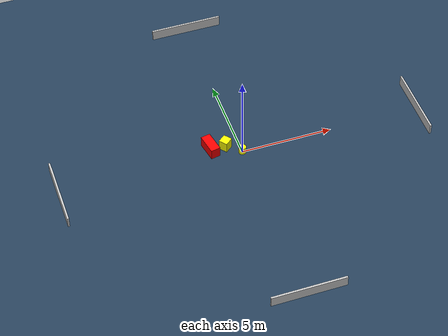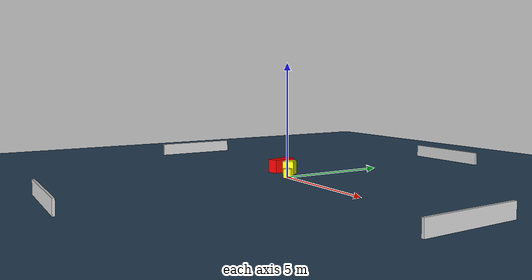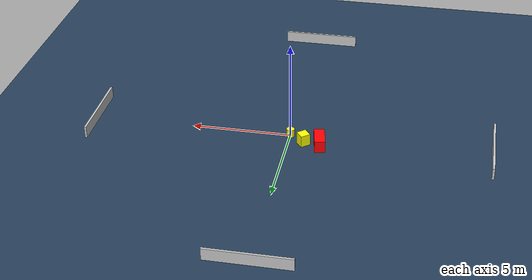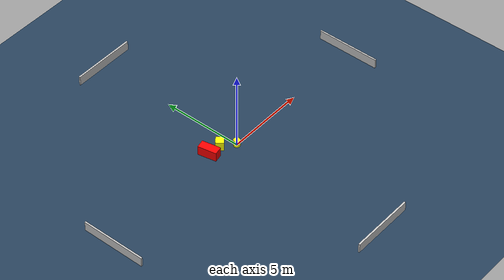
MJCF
<?xml version="1.0" ?>
<mujoco model="generated_environment">
  <option timestep="0.01" integrator="RK4" cone="elliptic"/>
  <default>
    <geom density="1"/>
  </default>
  <asset>
    <texture builtin="gradient" height="3072" name="skybox" rgb1="0.3 0.5 0.7" rgb2="0 0 0" type="skybox" width="512"/>
    <texture builtin="checker" height="300" name="groundplane" rgb1="0.2 0.3 0.4" rgb2="0.1 0.2 0.3" type="2d" width="300"/>
    <material name="groundplane" reflectance="0.2" texrepeat="5 5" texture="groundplane"/>
  </asset>
  <worldbody>
    <light dir="0 0 -1" directional="true" pos="0 0 1.5"/>
    <geom condim="3" friction="0.5 0.005 0.001" material="groundplane" name="floor" pos="0 0 0" size="0 0 0.05" type="plane"/>
    <body name="walls">
      <geom name="wall_1" condim="4" pos="-10.0 0.0 0.3" rgba="0.800000011920929 0.800000011920929 0.800000011920929 1.0" size="0.05 2.0 0.3" type="box"/>
      <geom name="wall_2" condim="4" pos="10.0 0.0 0.3" rgba="0.800000011920929 0.800000011920929 0.800000011920929 1.0" size="0.05 2.0 0.3" type="box"/>
      <geom name="wall_3" condim="4" pos="0.0 -10.0 0.3" rgba="0.800000011920929 0.800000011920929 0.800000011920929 1.0" size="2.0 0.05 0.3" type="box"/>
      <geom name="wall_4" condim="4" pos="0.0 10.0 0.3" rgba="0.800000011920929 0.800000011920929 0.800000011920929 1.0" size="2.0 0.05 0.3" type="box"/>
    </body>
    <body name="robot">
      <joint name="joint_x" type="slide" pos="0 0 0" axis="1 0 0"/>
      <joint name="joint_y" type="slide" pos="0 0 0" axis="0 1 0"/>
      <geom name="robot" type="cylinder" pos="0.0 0.0 0.2" size="0.2 0.2 0.0" mass="5.0" friction="1.0 0.005 0.0001" condim="4" rgba="1.0 1.0 0.0 1.0"/>
    </body>
    <body name="obstacle_1_movable">
      <geom name="obstacle_1_movable" condim="4" pos="-0.7502573118847036 0.5980870958738188 0.3" euler="0 0 218.77869078222187" friction="0.0 0.005 0.001" rgba="1.0 1.0 0.0 1.0" size="0.25323934088817984 0.24120243515398082 0.3" type="box" mass="0.1"/>
      <joint type="free"/>
    </body>
    <body name="obstacle_2_static">
      <geom name="obstacle_2_static" condim="4" pos="-1.5624486383585954 0.6629009247243706 0.3" euler="0 0 10.809850902976027" friction="0.0 0.005 0.001" rgba="1.0 0.0 0.0 1.0" size="0.2652790402954212 0.5778213355184666 0.3" type="box"/>
    </body>
  </worldbody>
  <actuator>
    <motor name="actuator_x" joint="joint_x" gear="1" ctrlrange="-1 1"/>
    <motor name="actuator_y" joint="joint_y" gear="1" ctrlrange="-1 1"/>
  </actuator>
</mujoco>
